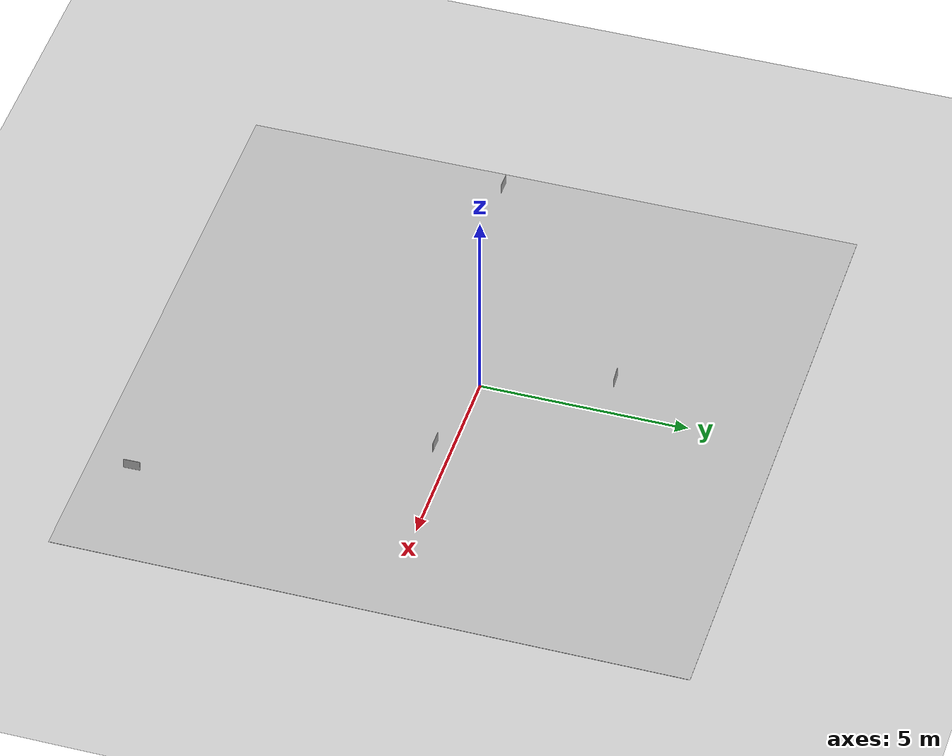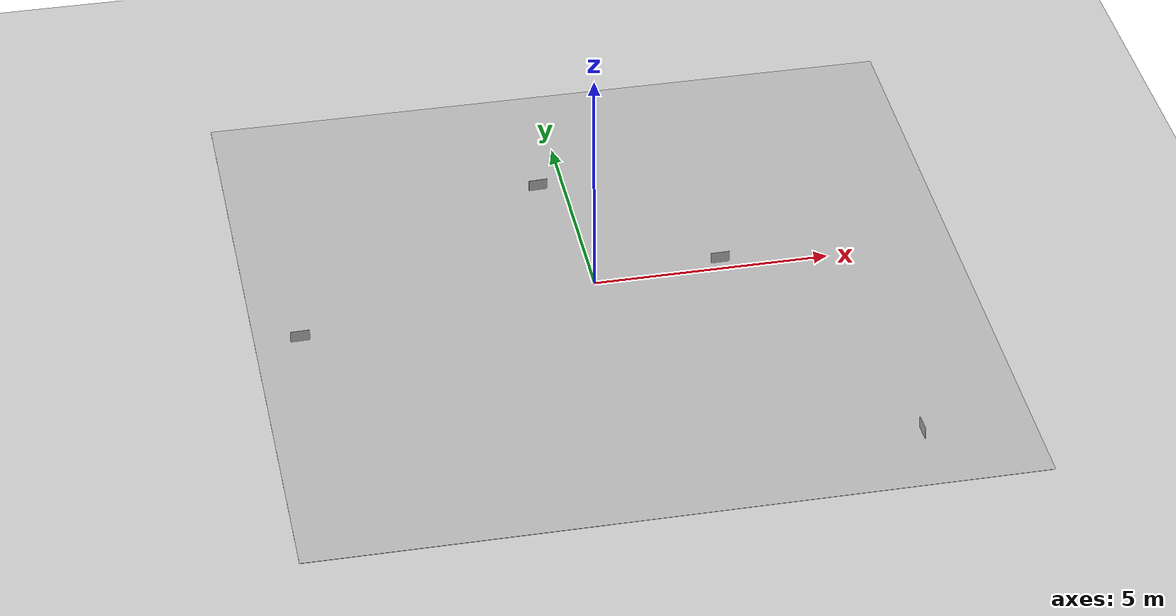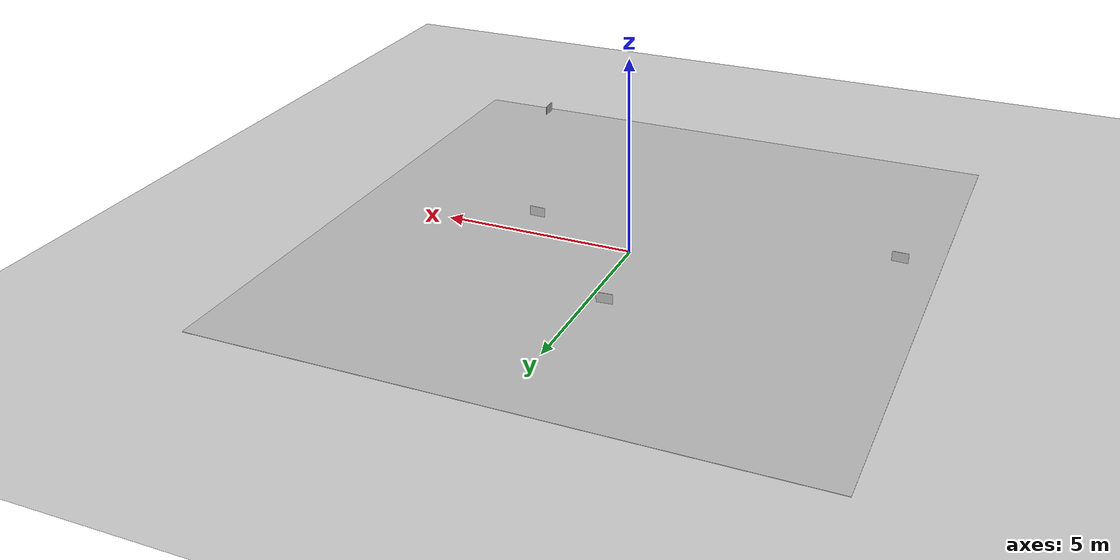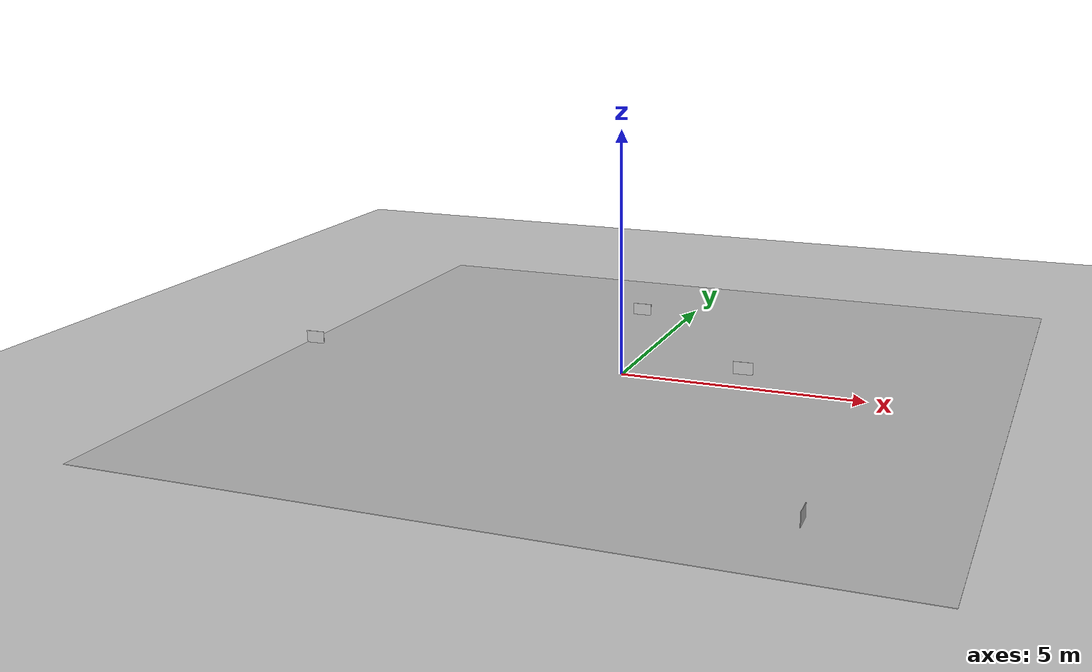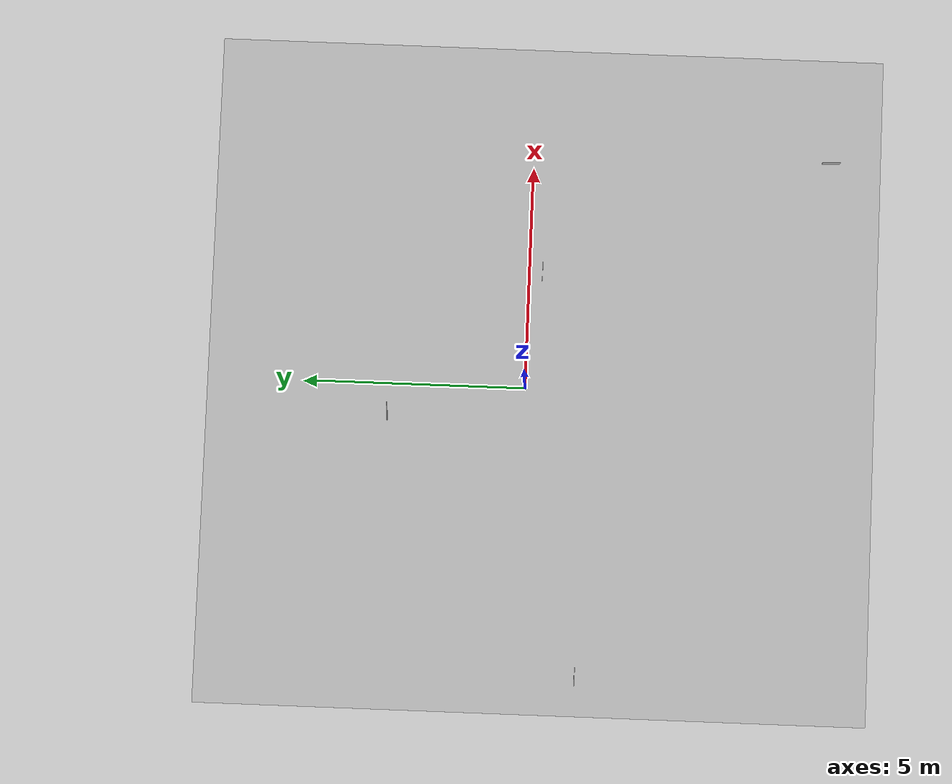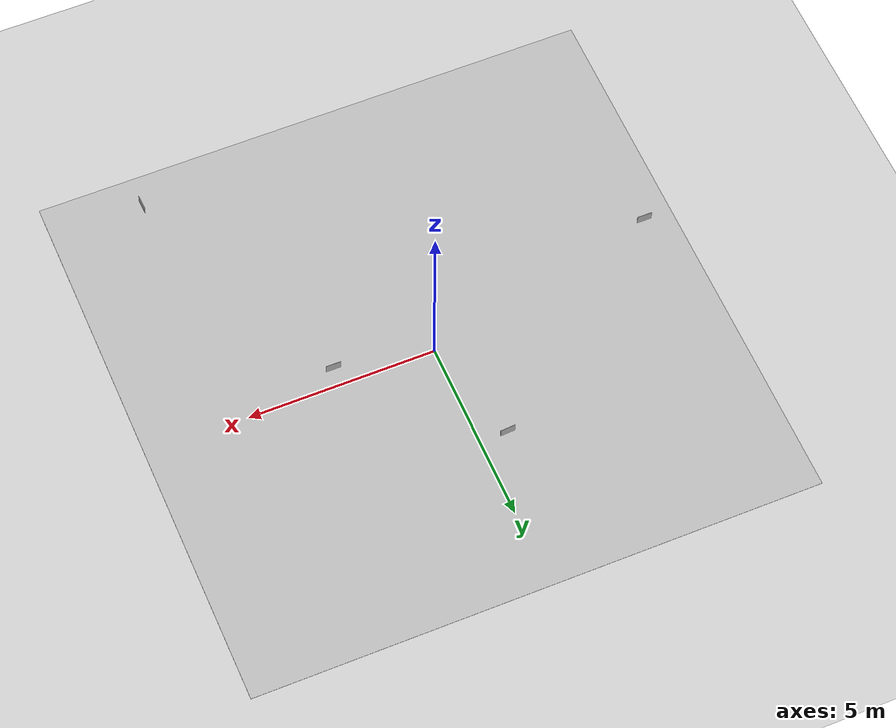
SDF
<sdf version="1.6">
 <world name="default">
  <light name="sun" type="directional">
   <pose>0 0 10 0 -0 0</pose>
   <diffuse>0.8 0.8 0.8 1</diffuse>
   <specular>0.2 0.2 0.2 1</specular>
   <attenuation>
    <range>1000</range>
    <constant>0.9</constant>
    <linear>0.01</linear>
    <quadratic>0.001</quadratic>
   </attenuation>
   <direction>-0.5 0.1 -0.9</direction>
  </light>
  <model name="ground_plane">
   <static>1</static>
   <link name="link">
    <collision name="collision">
     <geometry><plane><normal>0 0 1</normal><size>100 100</size></plane></geometry>
     <surface><friction><ode><mu>100</mu><mu2>50</mu2></ode></friction></surface>
    </collision>
    <visual name="visual">
     <cast_shadows>0</cast_shadows>
     <geometry><plane><normal>0 0 1</normal><size>100 100</size></plane></geometry>
     <material>
      <script><uri>file://media/materials/scripts/gazebo.material</uri><name>Gazebo/Grey</name></script>
     </material>
    </visual>
   </link>
  </model>
  <gravity>0 0 -9.8</gravity>
  <magnetic_field>6e-06 2.3e-05 -4.2e-05</magnetic_field>
  <atmosphere type="adiabatic"/>
  <physics name="default_physics" default="0" type="ode">
   <max_step_size>0.001</max_step_size>
   <real_time_factor>1</real_time_factor>
   <real_time_update_rate>1000</real_time_update_rate>
  </physics>
  <scene><ambient>0.4 0.4 0.4 1</ambient><background>0.7 0.7 0.7 1</background><shadows>1</shadows></scene>
  <spherical_coordinates>
   <surface_model>EARTH_WGS84</surface_model>
   <latitude_deg>0</latitude_deg>
   <longitude_deg>0</longitude_deg>
   <elevation>0</elevation>
   <heading_deg>0</heading_deg>
  </spherical_coordinates>
  <model name="my_ground_plane">
   <static>1</static>
   <link name="link">
    <collision name="collision">
     <geometry><box><size>15 15 0.01</size></box></geometry>
     <surface><friction><ode><mu>100</mu><mu2>50</mu2></ode></friction></surface>
    </collision>
    <visual name="visual">
     <geometry><box><size>15 15 0.01</size></box></geometry>
     <material>
      <script>
       <uri>model://my_ground_plane/materials/scripts</uri>
       <uri>model://my_ground_plane/materials/textures/</uri>
       <name>MyGroundPlane/Image</name>
      </script>
     </material>
    </visual>
   </link>
   <pose>0.237007 -0.337636 0 0 -0 0</pose>
  </model>
  <model name="green_light">
   <static>1</static>
   <link name="link">
    <collision name="collision">
     <geometry><box><size>0.25 0.01 0.4</size></box></geometry>
     <surface><friction><ode><mu>100</mu><mu2>50</mu2></ode></friction></surface>
    </collision>
    <visual name="visual">
     <geometry><box><size>0.25 0.01 0.4</size></box></geometry>
     <material>
      <script>
       <uri>model://green_light/materials/scripts</uri>
       <uri>model://green_light/materials/textures/</uri>
       <name>GreenLight/Image</name>
      </script>
     </material>
    </visual>
   </link>
   <pose>5.31269 -6.6707 0.505897 -5e-06 1.55915 -1.54055</pose>
  </model>
  <light name="user_directional_light_0" type="directional">
   <pose>4.92036 -3.60888 1 0 -0 0</pose>
   <diffuse>0.5 0.5 0.5 1</diffuse>
   <specular>0.1 0.1 0.1 1</specular>
   <direction>0.1 0.1 -0.9</direction>
   <attenuation>
    <range>20</range>
    <constant>0.5</constant>
    <linear>0.01</linear>
    <quadratic>0.001</quadratic>
   </attenuation>
  </light>
  <light name="user_directional_light_1" type="directional">
   <pose>4.90254 3.23807 1 0 -0 0</pose>
   <diffuse>0.5 0.5 0.5 1</diffuse>
   <specular>0.1 0.1 0.1 1</specular>
   <direction>0.1 0.1 -0.9</direction>
   <attenuation>
    <range>20</range>
    <constant>0.5</constant>
    <linear>0.01</linear>
    <quadratic>0.001</quadratic>
   </attenuation>
  </light>
  <light name="user_directional_light_2" type="directional">
   <pose>-4.37816 2.37645 1 0 -0 0</pose>
   <diffuse>0.5 0.5 0.5 1</diffuse>
   <specular>0.1 0.1 0.1 1</specular>
   <direction>0.1 0.1 -0.9</direction>
   <attenuation>
    <range>20</range>
    <constant>0.5</constant>
    <linear>0.01</linear>
    <quadratic>0.001</quadratic>
   </attenuation>
  </light>
  <light name="user_directional_light_3" type="directional">
   <pose>-4.39862 -3.95569 1 0 -0 0</pose>
   <diffuse>0.5 0.5 0.5 1</diffuse>
   <specular>0.1 0.1 0.1 1</specular>
   <direction>0.1 0.1 -0.9</direction>
   <attenuation>
    <range>20</range>
    <constant>0.5</constant>
    <linear>0.01</linear>
    <quadratic>0.001</quadratic>
   </attenuation>
  </light>
  <model name="red_light">
   <static>1</static>
   <link name="link">
    <collision name="collision">
     <geometry><box><size>0.25 0.01 0.4</size></box></geometry>
     <surface><friction><ode><mu>100</mu><mu2>50</mu2></ode></friction></surface>
    </collision>
    <visual name="visual">
     <geometry><box><size>0.25 0.01 0.4</size></box></geometry>
     <material>
      <script>
       <uri>model://red_light/materials/scripts</uri>
       <uri>model://red_light/materials/textures/</uri>
       <name>RedLight/Image</name>
      </script>
     </material>
    </visual>
   </link>
   <pose>2.61628 -0.278958 0.505529 0 1.55613 0</pose>
  </model>
  <model name="red_light_0">
   <static>1</static>
   <link name="link">
    <collision name="collision">
     <geometry><box><size>0.25 0.01 0.4</size></box></geometry>
     <surface><friction><ode><mu>100</mu><mu2>50</mu2></ode></friction></surface>
    </collision>
    <visual name="visual">
     <geometry><box><size>0.25 0.01 0.4</size></box></geometry>
     <material>
      <script>
       <uri>model://red_light/materials/scripts</uri>
       <uri>model://red_light/materials/textures/</uri>
       <name>RedLight/Image</name>
      </script>
     </material>
    </visual>
   </link>
   <pose>-6.36662 -1.32194 0.508057 0 1.55131 0</pose>
  </model>
  <model name="green_light_0">
   <static>1</static>
   <link name="link">
    <collision name="collision">
     <geometry><box><size>0.25 0.01 0.4</size></box></geometry>
     <surface><friction><ode><mu>100</mu><mu2>50</mu2></ode></friction></surface>
    </collision>
    <visual name="visual">
     <geometry><box><size>0.25 0.01 0.4</size></box></geometry>
     <material>
      <script>
       <uri>model://green_light/materials/scripts</uri>
       <uri>model://green_light/materials/textures/</uri>
       <name>GreenLight/Image</name>
      </script>
     </material>
    </visual>
   </link>
   <pose>-0.647699 3.07002 0.501053 -3.14159 -1.56065 0.056413</pose>
  </model>
  <light name="user_point_light_0" type="point">
   <pose>-0.588578 2.0947 1 0 -0 0</pose>
   <diffuse>0.5 0.5 0.5 1</diffuse>
   <specular>0.1 0.1 0.1 1</specular>
   <attenuation>
    <range>20</range>
    <constant>0.5</constant>
    <linear>0.01</linear>
    <quadratic>0.001</quadratic>
   </attenuation>
   <cast_shadows>0</cast_shadows>
   <direction>0 0 -1</direction>
  </light>
  <light name="user_point_light_1" type="point">
   <pose>2.60945 -1.41836 1 0 -0 0</pose>
   <diffuse>0.5 0.5 0.5 1</diffuse>
   <specular>0.1 0.1 0.1 1</specular>
   <attenuation>
    <range>20</range>
    <constant>0.5</constant>
    <linear>0.01</linear>
    <quadratic>0.001</quadratic>
   </attenuation>
   <cast_shadows>0</cast_shadows>
   <direction>0 0 -1</direction>
  </light>
  <light name="user_point_light_2" type="point">
   <pose>-6.32932 -0.848684 1 0 -0 0</pose>
   <diffuse>0.5 0.5 0.5 1</diffuse>
   <specular>0.1 0.1 0.1 1</specular>
   <attenuation>
    <range>20</range>
    <constant>0.5</constant>
    <linear>0.01</linear>
    <quadratic>0.001</quadratic>
   </attenuation>
   <cast_shadows>0</cast_shadows>
   <direction>0 0 -1</direction>
  </light>
  <light name="user_point_light_3" type="point">
   <pose>4.64332 -6.71266 1 0 -0 0</pose>
   <diffuse>0.5 0.5 0.5 1</diffuse>
   <specular>0.1 0.1 0.1 1</specular>
   <attenuation>
    <range>20</range>
    <constant>0.5</constant>
    <linear>0.01</linear>
    <quadratic>0.001</quadratic>
   </attenuation>
   <cast_shadows>0</cast_shadows>
   <direction>0 0 -1</direction>
  </light>
  <light name="user_point_light_4" type="point">
   <pose>-0.680439 4.58953 1 0 -0 0</pose>
   <diffuse>0.5 0.5 0.5 1</diffuse>
   <specular>0.1 0.1 0.1 1</specular>
   <attenuation>
    <range>20</range>
    <constant>0.5</constant>
    <linear>0.01</linear>
    <quadratic>0.001</quadratic>
   </attenuation>
   <cast_shadows>0</cast_shadows>
   <direction>0 0 -1</direction>
  </light>
  <light name="user_point_light_5" type="point">
   <pose>2.58107 0.694213 1 0 -0 0</pose>
   <diffuse>0.5 0.5 0.5 1</diffuse>
   <specular>0.1 0.1 0.1 1</specular>
   <attenuation>
    <range>20</range>
    <constant>0.5</constant>
    <linear>0.01</linear>
    <quadratic>0.001</quadratic>
   </attenuation>
   <cast_shadows>0</cast_shadows>
   <direction>0 0 -1</direction>
  </light>
  <light name="user_point_light_6" type="point">
   <pose>6.26898 -6.65092 1 0 -0 0</pose>
   <diffuse>0.5 0.5 0.5 1</diffuse>
   <specular>0.1 0.1 0.1 1</specular>
   <attenuation>
    <range>20</range>
    <constant>0.5</constant>
    <linear>0.01</linear>
    <quadratic>0.001</quadratic>
   </attenuation>
   <cast_shadows>0</cast_shadows>
   <direction>0 0 -1</direction>
  </light>
  <light name="user_point_light_7" type="point">
   <pose>-6.46138 -2.63774 1 0 -0 0</pose>
   <diffuse>0.5 0.5 0.5 1</diffuse>
   <specular>0.1 0.1 0.1 1</specular>
   <attenuation>
    <range>20</range>
    <constant>0.5</constant>
    <linear>0.01</linear>
    <quadratic>0.001</quadratic>
   </attenuation>
   <cast_shadows>0</cast_shadows>
   <direction>0 0 -1</direction>
  </light>
 </world>
</sdf>
